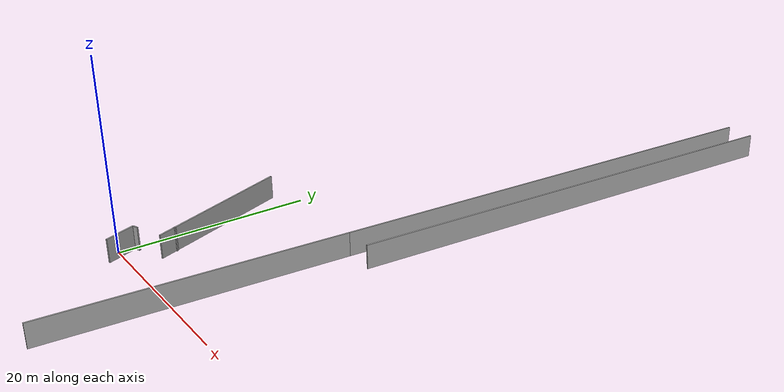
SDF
<?xml version="1.0" ?>
<sdf version="1.6">
  <model name="sps_4728">
    <pose frame="">0 0 0 0 -0 0</pose>
    <static>1</static>
    <self_collide>0</self_collide>
    <allow_auto_disable>0</allow_auto_disable>
    <link name="Wall262">
      <kinematic>0</kinematic>
      <gravity>1</gravity>
      <self_collide>0</self_collide>
      <collision name="collision">
        <geometry>
          <box>
            <size>3.33313 0.15 2.5</size>
          </box>
        </geometry>
        <pose frame="">0 0 0 0 -0 0</pose>
      </collision>
      <visual name="visual">
        <geometry>
          <box>
            <size>3.33313 0.15 2.5</size>
          </box>
        </geometry>
        <pose frame="">0 0 0 0 -0 0</pose>
        <cast_shadows>1</cast_shadows>
        <transparency>0.0</transparency>
      </visual>
      <pose frame="">0.776756 0.116103 1.25 0 0 -1.18645</pose>
    </link>
    <link name="Wall323">
      <kinematic>0</kinematic>
      <gravity>1</gravity>
      <self_collide>0</self_collide>
      <collision name="collision">
        <geometry>
          <box>
            <size>0.65133 0.15 2.5</size>
          </box>
        </geometry>
        <pose frame="">0 0 0 0 -0 0</pose>
      </collision>
      <visual name="visual">
        <geometry>
          <box>
            <size>0.65133 0.15 2.5</size>
          </box>
        </geometry>
        <pose frame="">0 0 0 0 -0 0</pose>
        <cast_shadows>1</cast_shadows>
        <transparency>0.0</transparency>
      </visual>
      <pose frame="">0.454582 1.7812 1.25 0 -0 0.377757</pose>
    </link>
    <link name="Wall390">
      <kinematic>0</kinematic>
      <gravity>1</gravity>
      <self_collide>0</self_collide>
      <collision name="collision">
        <geometry>
          <box>
            <size>16.0313 0.15 2.5</size>
          </box>
        </geometry>
        <pose frame="">0 0 0 0 -0 0</pose>
      </collision>
      <visual name="visual">
        <geometry>
          <box>
            <size>16.0313 0.15 2.5</size>
          </box>
        </geometry>
        <pose frame="">0 0 0 0 -0 0</pose>
        <cast_shadows>1</cast_shadows>
        <transparency>0.0</transparency>
      </visual>
      <pose frame="">0.558083 10.4452 1.25 0 0 -1.19216</pose>
    </link>
    <link name="Wall490">
      <kinematic>0</kinematic>
      <gravity>1</gravity>
      <self_collide>0</self_collide>
      <collision name="collision">
        <geometry>
          <box>
            <size>0.233288 0.15 2.5</size>
          </box>
        </geometry>
        <pose frame="">0 0 0 0 -0 0</pose>
      </collision>
      <visual name="visual">
        <geometry>
          <box>
            <size>0.233288 0.15 2.5</size>
          </box>
        </geometry>
        <pose frame="">0 0 0 0 -0 0</pose>
        <cast_shadows>1</cast_shadows>
        <transparency>0.0</transparency>
      </visual>
      <pose frame="">2.89526 4.79307 1.25 0 -0 0.377543</pose>
    </link>
    <link name="Wall589">
      <kinematic>0</kinematic>
      <gravity>1</gravity>
      <self_collide>0</self_collide>
      <collision name="collision">
        <geometry>
          <box>
            <size>50.0856 0.15 2.5</size>
          </box>
        </geometry>
        <pose frame="">0 0 0 0 -0 0</pose>
      </collision>
      <visual name="visual">
        <geometry>
          <box>
            <size>50.0856 0.15 2.5</size>
          </box>
        </geometry>
        <pose frame="">0 0 0 0 -0 0</pose>
        <cast_shadows>1</cast_shadows>
        <transparency>0.0</transparency>
      </visual>
      <pose frame="">15.0047 42.8931 1.25 0 0 -1.62928</pose>
    </link>
    <link name="Wall590">
      <kinematic>0</kinematic>
      <gravity>1</gravity>
      <self_collide>0</self_collide>
      <collision name="collision">
        <geometry>
          <box>
            <size>30.3164 0.15 2.5</size>
          </box>
        </geometry>
        <pose frame="">0 0 0 0 -0 0</pose>
      </collision>
      <visual name="visual">
        <geometry>
          <box>
            <size>30.3164 0.15 2.5</size>
          </box>
        </geometry>
        <pose frame="">0 0 0 0 -0 0</pose>
        <cast_shadows>1</cast_shadows>
        <transparency>0.0</transparency>
      </visual>
      <pose frame="">12.6547 2.76079 1.25 0 0 -1.62928</pose>
    </link>
    <link name="Wall668">
      <kinematic>0</kinematic>
      <gravity>1</gravity>
      <self_collide>0</self_collide>
      <collision name="collision">
        <geometry>
          <box>
            <size>50.0856 0.15 2.5</size>
          </box>
        </geometry>
        <pose frame="">0 0 0 0 -0 0</pose>
      </collision>
      <visual name="visual">
        <geometry>
          <box>
            <size>50.0856 0.15 2.5</size>
          </box>
        </geometry>
        <pose frame="">0 0 0 0 -0 0</pose>
        <cast_shadows>1</cast_shadows>
        <transparency>0.0</transparency>
      </visual>
      <pose frame="">18.1501 42.8931 1.25 0 0 -1.62929</pose>
    </link>
  </model>
</sdf>
